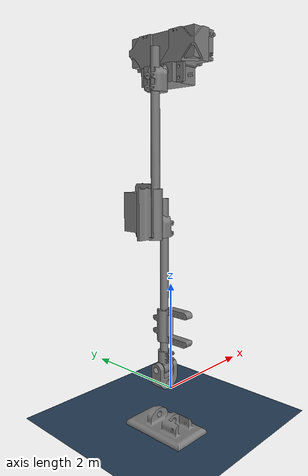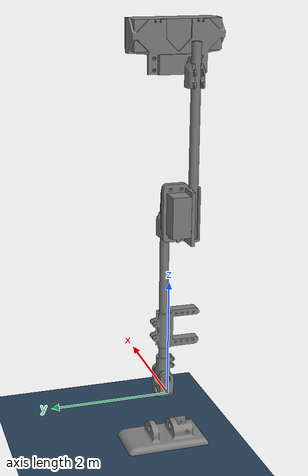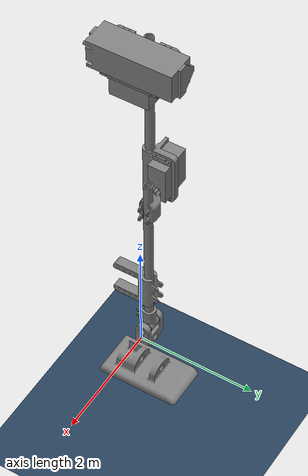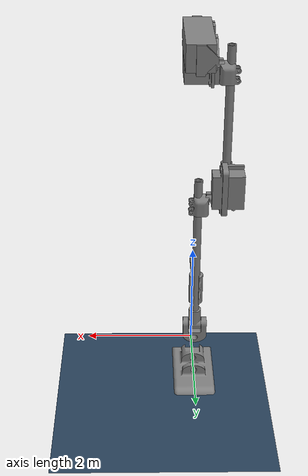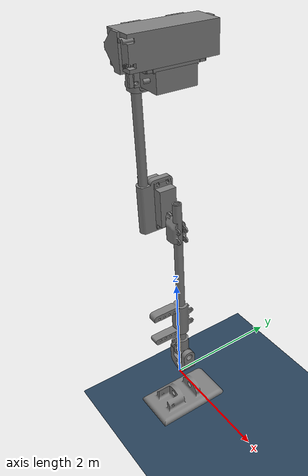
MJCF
<!--
    Units:
        Length: cm
        Mass: Kg

    Notes:
        need to add proper actuators
        need to add acurate joint dynamics
        needs proper materials with masses in kg
 -->

<mujoco>
    <compiler autolimits="true"/>

    <option timestep="0.001"/>

    <default>
        <motor ctrlrange="-1 1" ctrllimited="true"/>
        <mesh scale=".01 .01 .01" />
        <geom friction=".7" solimp=".9 .99 .003" solref=".015 1"/>
        <joint type="hinge" range="-90 90" damping=".2" armature=".01" solimplimit="0 .99 .01" ref="0" actuatorfrcrange="-0.5 0.5"/>
    </default>

    <asset>
        <texture name="grid" type="2d" builtin="checker" width="512" height="512" rgb1=".1 .2 .3" rgb2=".2 .3 .4"/>
        <material name="grid" texture="grid" texrepeat="1 1" texuniform="true" reflectance=".2"/>
        <mesh name="Foot" file="Hopper_Foot.stl"/>
        <mesh name="bat" file="battery.stl"/>
        <mesh name="bat_hold" file="battery_holder.stl"/>
        <mesh name="hip_servo" file="Hip_servo.stl"/>
        <mesh name="horn" file="horn.stl"/>
        <mesh name="femur_brak" file="femur_brak.stl"/>
        <mesh name="femur" file="CFrod.stl"/>
        <mesh name="knee_servo_brak" file="knee_servo_brak.stl"/>
        <mesh name="knee_servo" file="knee_servo.stl"/>
        <mesh name="ankle_servo_brak" file="ankle_servo_brak.stl"/>
        <mesh name="ankle_pitch" file="Ankle_Pitch.stl"/>
        <mesh name="ankle_roll" file="Ankle_Roll.stl"/>
    </asset>

    <worldbody>
        <geom name="floor" pos="0 0 -1" size="0 0 .05" type="plane" material="grid" condim="3"/>
        <light name="spotlight" mode="targetbodycom" target="bat" diffuse=".8 .8 .8" specular="0.3 0.3 0.3" pos="0 -6 4" cutoff="30"/>
        <body name="bat" pos="0 0 6">
            <geom name="battery" type="mesh" mesh="bat"/>
                <body name="bathold">
                <geom name="bathold" type="mesh" mesh="bat_hold"/>
                    <body name="hip servo">
                    <geom name="hip_servo" type="mesh" mesh="hip_servo"/>
                        <body name="hip_horn" pos="-.34 -.17 -.42">
                        <joint axis="1 0 0" limited="true" range="-90 90" />
                        <geom name="hip_horn" type="mesh" mesh="horn"/>
                            <body name="femur_brak" pos="-.1 0 -.15">
                            <geom name="femur_brak" type="mesh" mesh="femur_brak"/>
                                <body name="femur" pos="-.125 0 -2.5">
                                <geom name="femur" type="mesh" mesh="femur"/>
                                    <body name="knee_servo_brak" pos=".015 .14 .4">
                                    <geom name="knee_servo_brak" type="mesh" mesh="knee_servo_brak"/>
                                        <body name="knee_servo" pos=".135 .14 -.1">
                                        <geom name="knee_servo" type="mesh" mesh="knee_servo" />
                                            <body name="knee_horn" pos=".125 0 -.05">
                                            <joint name="knee" axis="1 0 0" limited="true" range="-5 175" />
                                            <geom name="knee_horn" type="mesh" mesh="horn" axisangle="0 0 1 180" />
                                                <body name="shin_brak" pos=".106 0 -.1465">
                                                <geom name="shin_brak" type="mesh" mesh="femur_brak" axisangle="0 0 1 180"/>
                                                    <body name="shin" pos=".125 0 -2.5">
                                                    <geom name="shin" type="mesh" mesh="femur"/>

                                                        <body name="ankle_servo_brak" pos="0 -.07 .7">
                                                        <geom name="ankle_servo_brak" type="mesh" mesh="ankle_servo_brak"/>
                                                        </body>

                                                        <body name="ankle_pitch" pos="0 0 -.13">
                                                        <geom name="ankle_pitch" type="mesh" mesh="ankle_pitch"/>
                                                            <body name="ankle_roll" pos="0 0 0">
                                                            <geom name="ankle_roll" type="mesh" mesh="ankle_roll"/>
                                                            <joint type="hinge" axis="1 0 0" />
                                                                <body name="foot" pos="0 0 -1">
                                                                <joint type="hinge" axis="0 1 0" />
                                                                <geom name="foot" type="mesh" mesh="Foot"/>
                                                                </body>
                                                            </body>
                                                        </body>
                                                    </body>
                                                </body>
                                            </body>
                                        </body>
                                    </body>
                                </body>
                            </body>
                        </body>
                    </body>
            </body>
        </body>

    </worldbody>

     <contact>
        <exclude name="horn-servo" body1="hip_horn" body2="hip servo" />
        <exclude name="hip servo brak" body1="hip_horn" body2="femur_brak" />
        <exclude name="hip servo" body1="hip servo" body2="femur_brak" />
    </contact>

    <actuator>
        <general name="knee" forcerange="0 155" gainprm="10"   gear="400"  joint="knee"/>
    </actuator>

</mujoco>
